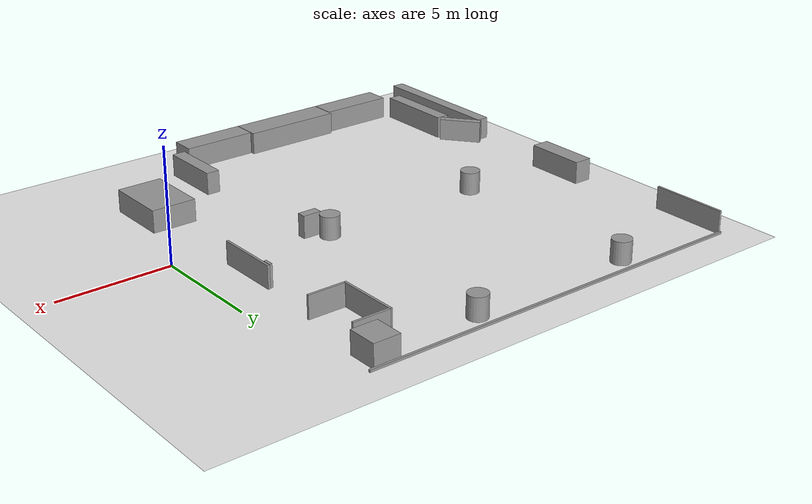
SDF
<sdf version="1.6">
 <world name="default">
  <model name="ground_plane">
   <static>1</static>
   <link name="link">
    <collision name="collision">
     <geometry><plane><normal>0 0 1</normal><size>100 100</size></plane></geometry>
     <surface><friction><ode><mu>100</mu><mu2>50</mu2></ode></friction></surface>
    </collision>
    <visual name="visual">
     <cast_shadows>0</cast_shadows>
     <geometry><plane><normal>0 0 1</normal><size>100 100</size></plane></geometry>
     <material>
      <script><uri>file://media/materials/scripts/gazebo.material</uri><name>Gazebo/WhiteGlow</name></script>
     </material>
    </visual>
   </link>
  </model>
  <model name="L81">
   <link name="link_0">
    <pose>15.5392 12.1518 0.017394 0 -0 0</pose>
    <inertial>
     <mass>1</mass>
     <inertia><ixx>0.145833</ixx><ixy>0</ixy><ixz>0</ixz><iyy>0.145833</iyy><iyz>0</iyz><izz>0.125</izz></inertia>
    </inertial>
    <visual name="visual">
     <geometry><cylinder><radius>0.43</radius><length>1</length></cylinder></geometry>
     <material>
      <lighting>1</lighting>
      <script><uri>file://media/materials/scripts/gazebo.material</uri><name>Gazebo/Grey</name></script>
      <shader type="pixel"><normal_map>__default__</normal_map></shader>
      <ambient>0.3 0.3 0.3 1</ambient>
      <diffuse>0.7 0.7 0.7 1</diffuse>
      <specular>0.01 0.01 0.01 1</specular>
      <emissive>0 0 0 1</emissive>
     </material>
    </visual>
    <collision name="collision">
     <geometry><cylinder><radius>0.43</radius><length>1</length></cylinder></geometry>
     <surface>
      <friction>
       <ode><mu>1</mu><mu2>1</mu2><fdir1>0 0 0</fdir1><slip1>0</slip1><slip2>0</slip2></ode>
       <torsional>
        <coefficient>1</coefficient>
        <patch_radius>0</patch_radius>
        <surface_radius>0</surface_radius>
        <use_patch_radius>1</use_patch_radius>
        <ode><slip>0</slip></ode>
       </torsional>
      </friction>
      <bounce><restitution_coefficient>0</restitution_coefficient><threshold>1e+06</threshold></bounce>
      <contact>
       <collide_without_contact>0</collide_without_contact>
       <collide_without_contact_bitmask>1</collide_without_contact_bitmask>
       <collide_bitmask>1</collide_bitmask>
       <ode>
        <soft_cfm>0</soft_cfm>
        <soft_erp>0.2</soft_erp>
        <kp>1e+13</kp>
        <kd>1</kd>
        <max_vel>0.01</max_vel>
        <min_depth>0</min_depth>
       </ode>
       <bullet>
        <split_impulse>1</split_impulse>
        <split_impulse_penetration_threshold>-0.01</split_impulse_penetration_threshold>
        <soft_cfm>0</soft_cfm>
        <soft_erp>0.2</soft_erp>
        <kp>1e+13</kp>
        <kd>1</kd>
       </bullet>
      </contact>
     </surface>
    </collision>
   </link>
   <link name="link_0_clone">
    <pose>15.5293 4.61164 0.017394 0 -0 0</pose>
    <inertial>
     <mass>1</mass>
     <inertia><ixx>0.145833</ixx><ixy>0</ixy><ixz>0</ixz><iyy>0.145833</iyy><iyz>0</iyz><izz>0.125</izz></inertia>
    </inertial>
    <visual name="visual">
     <geometry><cylinder><radius>0.43</radius><length>1</length></cylinder></geometry>
     <material>
      <lighting>1</lighting>
      <script><uri>file://media/materials/scripts/gazebo.material</uri><name>Gazebo/Grey</name></script>
      <shader type="pixel"><normal_map>__default__</normal_map></shader>
      <ambient>0.3 0.3 0.3 1</ambient>
      <diffuse>0.7 0.7 0.7 1</diffuse>
      <specular>0.01 0.01 0.01 1</specular>
      <emissive>0 0 0 1</emissive>
     </material>
    </visual>
    <collision name="collision">
     <geometry><cylinder><radius>0.43</radius><length>1</length></cylinder></geometry>
     <surface>
      <friction>
       <ode><mu>1</mu><mu2>1</mu2><fdir1>0 0 0</fdir1><slip1>0</slip1><slip2>0</slip2></ode>
       <torsional>
        <coefficient>1</coefficient>
        <patch_radius>0</patch_radius>
        <surface_radius>0</surface_radius>
        <use_patch_radius>1</use_patch_radius>
        <ode><slip>0</slip></ode>
       </torsional>
      </friction>
      <bounce><restitution_coefficient>0</restitution_coefficient><threshold>1e+06</threshold></bounce>
      <contact>
       <collide_without_contact>0</collide_without_contact>
       <collide_without_contact_bitmask>1</collide_without_contact_bitmask>
       <collide_bitmask>1</collide_bitmask>
       <ode>
        <soft_cfm>0</soft_cfm>
        <soft_erp>0.2</soft_erp>
        <kp>1e+13</kp>
        <kd>1</kd>
        <max_vel>0.01</max_vel>
        <min_depth>0</min_depth>
       </ode>
       <bullet>
        <split_impulse>1</split_impulse>
        <split_impulse_penetration_threshold>-0.01</split_impulse_penetration_threshold>
        <soft_cfm>0</soft_cfm>
        <soft_erp>0.2</soft_erp>
        <kp>1e+13</kp>
        <kd>1</kd>
       </bullet>
      </contact>
     </surface>
    </collision>
   </link>
   <link name="link_0_clone_0">
    <pose>6.51018 12.165 0.017394 0 -0 0</pose>
    <inertial>
     <mass>1</mass>
     <inertia><ixx>0.145833</ixx><ixy>0</ixy><ixz>0</ixz><iyy>0.145833</iyy><iyz>0</iyz><izz>0.125</izz></inertia>
    </inertial>
    <visual name="visual">
     <geometry><cylinder><radius>0.43</radius><length>1</length></cylinder></geometry>
     <material>
      <lighting>1</lighting>
      <script><uri>file://media/materials/scripts/gazebo.material</uri><name>Gazebo/Grey</name></script>
      <shader type="pixel"><normal_map>__default__</normal_map></shader>
      <ambient>0.3 0.3 0.3 1</ambient>
      <diffuse>0.7 0.7 0.7 1</diffuse>
      <specular>0.01 0.01 0.01 1</specular>
      <emissive>0 0 0 1</emissive>
     </material>
    </visual>
    <collision name="collision">
     <geometry><cylinder><radius>0.43</radius><length>1</length></cylinder></geometry>
     <surface>
      <friction>
       <ode><mu>1</mu><mu2>1</mu2><fdir1>0 0 0</fdir1><slip1>0</slip1><slip2>0</slip2></ode>
       <torsional>
        <coefficient>1</coefficient>
        <patch_radius>0</patch_radius>
        <surface_radius>0</surface_radius>
        <use_patch_radius>1</use_patch_radius>
        <ode><slip>0</slip></ode>
       </torsional>
      </friction>
      <bounce><restitution_coefficient>0</restitution_coefficient><threshold>1e+06</threshold></bounce>
      <contact>
       <collide_without_contact>0</collide_without_contact>
       <collide_without_contact_bitmask>1</collide_without_contact_bitmask>
       <collide_bitmask>1</collide_bitmask>
       <ode>
        <soft_cfm>0</soft_cfm>
        <soft_erp>0.2</soft_erp>
        <kp>1e+13</kp>
        <kd>1</kd>
        <max_vel>0.01</max_vel>
        <min_depth>0</min_depth>
       </ode>
       <bullet>
        <split_impulse>1</split_impulse>
        <split_impulse_penetration_threshold>-0.01</split_impulse_penetration_threshold>
        <soft_cfm>0</soft_cfm>
        <soft_erp>0.2</soft_erp>
        <kp>1e+13</kp>
        <kd>1</kd>
       </bullet>
      </contact>
     </surface>
    </collision>
   </link>
   <link name="link_0_clone_0_clone">
    <pose>6.51926 4.6616 0.017394 0 -0 0</pose>
    <inertial>
     <mass>1</mass>
     <inertia><ixx>0.145833</ixx><ixy>0</ixy><ixz>0</ixz><iyy>0.145833</iyy><iyz>0</iyz><izz>0.125</izz></inertia>
    </inertial>
    <visual name="visual">
     <geometry><cylinder><radius>0.43</radius><length>1</length></cylinder></geometry>
     <material>
      <lighting>1</lighting>
      <script><uri>file://media/materials/scripts/gazebo.material</uri><name>Gazebo/Grey</name></script>
      <shader type="pixel"><normal_map>__default__</normal_map></shader>
      <ambient>0.3 0.3 0.3 1</ambient>
      <diffuse>0.7 0.7 0.7 1</diffuse>
      <specular>0.01 0.01 0.01 1</specular>
      <emissive>0 0 0 1</emissive>
     </material>
    </visual>
    <collision name="collision">
     <geometry><cylinder><radius>0.43</radius><length>1</length></cylinder></geometry>
     <surface>
      <friction>
       <ode><mu>1</mu><mu2>1</mu2><fdir1>0 0 0</fdir1><slip1>0</slip1><slip2>0</slip2></ode>
       <torsional>
        <coefficient>1</coefficient>
        <patch_radius>0</patch_radius>
        <surface_radius>0</surface_radius>
        <use_patch_radius>1</use_patch_radius>
        <ode><slip>0</slip></ode>
       </torsional>
      </friction>
      <bounce><restitution_coefficient>0</restitution_coefficient><threshold>1e+06</threshold></bounce>
      <contact>
       <collide_without_contact>0</collide_without_contact>
       <collide_without_contact_bitmask>1</collide_without_contact_bitmask>
       <collide_bitmask>1</collide_bitmask>
       <ode>
        <soft_cfm>0</soft_cfm>
        <soft_erp>0.2</soft_erp>
        <kp>1e+13</kp>
        <kd>1</kd>
        <max_vel>0.01</max_vel>
        <min_depth>0</min_depth>
       </ode>
       <bullet>
        <split_impulse>1</split_impulse>
        <split_impulse_penetration_threshold>-0.01</split_impulse_penetration_threshold>
        <soft_cfm>0</soft_cfm>
        <soft_erp>0.2</soft_erp>
        <kp>1e+13</kp>
        <kd>1</kd>
       </bullet>
      </contact>
     </surface>
    </collision>
   </link>
   <link name="link_1_clone_2_clone">
    <pose>13.3256 16.665 0.017394 0 -0 0</pose>
    <inertial>
     <mass>0.0501795</mass>
     <inertia>
      <ixx>0.0042482</ixx>
      <ixy>0</ixy>
      <ixz>0</ixz>
      <iyy>0.00484291</iyy>
      <iyz>0</iyz>
      <izz>0.000727871</izz>
     </inertia>
    </inertial>
    <visual name="visual">
     <geometry><box><size>0.397671 0.126182 1</size></box></geometry>
     <material>
      <lighting>1</lighting>
      <script><uri>file://media/materials/scripts/gazebo.material</uri><name>Gazebo/Grey</name></script>
      <shader type="pixel"><normal_map>__default__</normal_map></shader>
      <ambient>0.3 0.3 0.3 1</ambient>
      <diffuse>0.7 0.7 0.7 1</diffuse>
      <specular>0.01 0.01 0.01 1</specular>
      <emissive>0 0 0 1</emissive>
     </material>
    </visual>
    <collision name="collision">
     <geometry><box><size>0.397671 0.126182 1</size></box></geometry>
     <surface>
      <friction>
       <ode><mu>1</mu><mu2>1</mu2><fdir1>0 0 0</fdir1><slip1>0</slip1><slip2>0</slip2></ode>
       <torsional>
        <coefficient>1</coefficient>
        <patch_radius>0</patch_radius>
        <surface_radius>0</surface_radius>
        <use_patch_radius>1</use_patch_radius>
        <ode><slip>0</slip></ode>
       </torsional>
      </friction>
      <bounce><restitution_coefficient>0</restitution_coefficient><threshold>1e+06</threshold></bounce>
      <contact>
       <collide_without_contact>0</collide_without_contact>
       <collide_without_contact_bitmask>1</collide_without_contact_bitmask>
       <collide_bitmask>1</collide_bitmask>
       <ode>
        <soft_cfm>0</soft_cfm>
        <soft_erp>0.2</soft_erp>
        <kp>1e+13</kp>
        <kd>1</kd>
        <max_vel>0.01</max_vel>
        <min_depth>0</min_depth>
       </ode>
       <bullet>
        <split_impulse>1</split_impulse>
        <split_impulse_penetration_threshold>-0.01</split_impulse_penetration_threshold>
        <soft_cfm>0</soft_cfm>
        <soft_erp>0.2</soft_erp>
        <kp>1e+13</kp>
        <kd>1</kd>
       </bullet>
      </contact>
     </surface>
    </collision>
   </link>
   <link name="link_1_clone_2_clone_clone">
    <pose>16.1732 12.7098 0.017394 0 -0 0</pose>
    <inertial>
     <mass>0.330309</mass>
     <inertia>
      <ixx>0.0465158</ixx>
      <ixy>0</ixy>
      <ixz>0</ixz>
      <iyy>0.0318787</iyy>
      <iyz>0</iyz>
      <izz>0.023343</izz>
     </inertia>
    </inertial>
    <visual name="visual">
     <geometry><box><size>0.397671 0.830603 1</size></box></geometry>
     <material>
      <lighting>1</lighting>
      <script><uri>file://media/materials/scripts/gazebo.material</uri><name>Gazebo/Grey</name></script>
      <shader type="pixel"><normal_map>__default__</normal_map></shader>
      <ambient>0.3 0.3 0.3 1</ambient>
      <diffuse>0.7 0.7 0.7 1</diffuse>
      <specular>0.01 0.01 0.01 1</specular>
      <emissive>0 0 0 1</emissive>
     </material>
    </visual>
    <collision name="collision">
     <geometry><box><size>0.397671 0.830603 1</size></box></geometry>
     <surface>
      <friction>
       <ode><mu>1</mu><mu2>1</mu2><fdir1>0 0 0</fdir1><slip1>0</slip1><slip2>0</slip2></ode>
       <torsional>
        <coefficient>1</coefficient>
        <patch_radius>0</patch_radius>
        <surface_radius>0</surface_radius>
        <use_patch_radius>1</use_patch_radius>
        <ode><slip>0</slip></ode>
       </torsional>
      </friction>
      <bounce><restitution_coefficient>0</restitution_coefficient><threshold>1e+06</threshold></bounce>
      <contact>
       <collide_without_contact>0</collide_without_contact>
       <collide_without_contact_bitmask>1</collide_without_contact_bitmask>
       <collide_bitmask>1</collide_bitmask>
       <ode>
        <soft_cfm>0</soft_cfm>
        <soft_erp>0.2</soft_erp>
        <kp>1e+13</kp>
        <kd>1</kd>
        <max_vel>0.01</max_vel>
        <min_depth>0</min_depth>
       </ode>
       <bullet>
        <split_impulse>1</split_impulse>
        <split_impulse_penetration_threshold>-0.01</split_impulse_penetration_threshold>
        <soft_cfm>0</soft_cfm>
        <soft_erp>0.2</soft_erp>
        <kp>1e+13</kp>
        <kd>1</kd>
       </bullet>
      </contact>
     </surface>
    </collision>
   </link>
   <link name="link_clone_0_clone_clone_0_clone_clone_clone_1_clone_0_clone_clone_clone_1">
    <pose>5.8259 8.58518 -0.453146 0 -0 0</pose>
    <inertial>
     <mass>6.48611</mass>
     <inertia><ixx>178.504</ixx><ixy>0</ixy><ixz>0</ixz><iyy>0.545914</iyy><iyz>0</iyz><izz>177.969</izz></inertia>
    </inertial>
    <visual name="visual">
     <geometry><box><size>0.1 18.1453 0.1</size></box></geometry>
     <material>
      <script><name>Gazebo/Grey</name><uri>file://media/materials/scripts/gazebo.material</uri></script>
      <shader type="pixel"><normal_map>__default__</normal_map></shader>
      <ambient>0.3 0.3 0.3 1</ambient>
      <diffuse>0.7 0.7 0.7 1</diffuse>
      <specular>0.01 0.01 0.01 1</specular>
      <emissive>0 0 0 1</emissive>
     </material>
    </visual>
    <collision name="collision">
     <geometry><box><size>0.1 18.1453 0.1</size></box></geometry>
     <surface>
      <friction>
       <ode><mu>1</mu><mu2>1</mu2><fdir1>0 0 0</fdir1><slip1>0</slip1><slip2>0</slip2></ode>
       <torsional>
        <coefficient>1</coefficient>
        <patch_radius>0</patch_radius>
        <surface_radius>0</surface_radius>
        <use_patch_radius>1</use_patch_radius>
        <ode><slip>0</slip></ode>
       </torsional>
      </friction>
      <bounce><restitution_coefficient>0</restitution_coefficient><threshold>1e+06</threshold></bounce>
      <contact>
       <collide_without_contact>0</collide_without_contact>
       <collide_without_contact_bitmask>1</collide_without_contact_bitmask>
       <collide_bitmask>1</collide_bitmask>
       <ode>
        <soft_cfm>0</soft_cfm>
        <soft_erp>0.2</soft_erp>
        <kp>1e+13</kp>
        <kd>1</kd>
        <max_vel>0.01</max_vel>
        <min_depth>0</min_depth>
       </ode>
       <bullet>
        <split_impulse>1</split_impulse>
        <split_impulse_penetration_threshold>-0.01</split_impulse_penetration_threshold>
        <soft_cfm>0</soft_cfm>
        <soft_erp>0.2</soft_erp>
        <kp>1e+13</kp>
        <kd>1</kd>
       </bullet>
      </contact>
     </surface>
    </collision>
   </link>
   <link name="link_clone_0_clone_clone_0_clone_clone_clone_1_clone_1_clone_2">
    <pose>21.7066 16.5978 -0 0 -0 0</pose>
    <inertial>
     <mass>58.8671</mass>
     <inertia><ixx>24.528</ixx><ixy>0</ixy><ixz>0</ixz><iyy>44.8619</iyy><iyz>0</iyz><izz>59.5787</izz></inertia>
    </inertial>
    <visual name="visual">
     <geometry><box><size>2.85395 2 1</size></box></geometry>
     <material>
      <script><name>Gazebo/Grey</name><uri>file://media/materials/scripts/gazebo.material</uri></script>
      <shader type="pixel"><normal_map>__default__</normal_map></shader>
      <ambient>0.3 0.3 0.3 1</ambient>
      <diffuse>0.7 0.7 0.7 1</diffuse>
      <specular>0.01 0.01 0.01 1</specular>
      <emissive>0 0 0 1</emissive>
     </material>
    </visual>
    <collision name="collision">
     <geometry><box><size>2.85395 2 1</size></box></geometry>
     <surface>
      <friction>
       <ode><mu>1</mu><mu2>1</mu2><fdir1>0 0 0</fdir1><slip1>0</slip1><slip2>0</slip2></ode>
       <torsional>
        <coefficient>1</coefficient>
        <patch_radius>0</patch_radius>
        <surface_radius>0</surface_radius>
        <use_patch_radius>1</use_patch_radius>
        <ode><slip>0</slip></ode>
       </torsional>
      </friction>
      <bounce><restitution_coefficient>0</restitution_coefficient><threshold>1e+06</threshold></bounce>
      <contact>
       <collide_without_contact>0</collide_without_contact>
       <collide_without_contact_bitmask>1</collide_without_contact_bitmask>
       <collide_bitmask>1</collide_bitmask>
       <ode>
        <soft_cfm>0</soft_cfm>
        <soft_erp>0.2</soft_erp>
        <kp>1e+13</kp>
        <kd>1</kd>
        <max_vel>0.01</max_vel>
        <min_depth>0</min_depth>
       </ode>
       <bullet>
        <split_impulse>1</split_impulse>
        <split_impulse_penetration_threshold>-0.01</split_impulse_penetration_threshold>
        <soft_cfm>0</soft_cfm>
        <soft_erp>0.2</soft_erp>
        <kp>1e+13</kp>
        <kd>1</kd>
       </bullet>
      </contact>
     </surface>
    </collision>
   </link>
   <link name="link_clone_0_clone_clone_0_clone_clone_clone_1_clone_1_clone_2_clone">
    <pose>6.52717 16.8346 0 0 -0 0</pose>
    <inertial>
     <mass>16.2132</mass>
     <inertia><ixx>3.28442</ixx><ixy>0</ixy><ixz>0</ixz><iyy>3.68461</iyy><iyz>0</iyz><izz>4.26683</izz></inertia>
    </inertial>
    <visual name="visual">
     <geometry><box><size>1.3142 1.19621 1</size></box></geometry>
     <material>
      <script><name>Gazebo/Grey</name><uri>file://media/materials/scripts/gazebo.material</uri></script>
      <shader type="pixel"><normal_map>__default__</normal_map></shader>
      <ambient>0.3 0.3 0.3 1</ambient>
      <diffuse>0.7 0.7 0.7 1</diffuse>
      <specular>0.01 0.01 0.01 1</specular>
      <emissive>0 0 0 1</emissive>
     </material>
    </visual>
    <collision name="collision">
     <geometry><box><size>1.3142 1.19621 1</size></box></geometry>
     <surface>
      <friction>
       <ode><mu>1</mu><mu2>1</mu2><fdir1>0 0 0</fdir1><slip1>0</slip1><slip2>0</slip2></ode>
       <torsional>
        <coefficient>1</coefficient>
        <patch_radius>0</patch_radius>
        <surface_radius>0</surface_radius>
        <use_patch_radius>1</use_patch_radius>
        <ode><slip>0</slip></ode>
       </torsional>
      </friction>
      <bounce><restitution_coefficient>0</restitution_coefficient><threshold>1e+06</threshold></bounce>
      <contact>
       <collide_without_contact>0</collide_without_contact>
       <collide_without_contact_bitmask>1</collide_without_contact_bitmask>
       <collide_bitmask>1</collide_bitmask>
       <ode>
        <soft_cfm>0</soft_cfm>
        <soft_erp>0.2</soft_erp>
        <kp>1e+13</kp>
        <kd>1</kd>
        <max_vel>0.01</max_vel>
        <min_depth>0</min_depth>
       </ode>
       <bullet>
        <split_impulse>1</split_impulse>
        <split_impulse_penetration_threshold>-0.01</split_impulse_penetration_threshold>
        <soft_cfm>0</soft_cfm>
        <soft_erp>0.2</soft_erp>
        <kp>1e+13</kp>
        <kd>1</kd>
       </bullet>
      </contact>
     </surface>
    </collision>
   </link>
   <link name="link_clone_0_clone_clone_0_clone_clone_clone_1_clone_1_clone_2_clone_0">
    <pose>23.7852 13.4165 -0 0 -0 0</pose>
    <inertial>
     <mass>17.6822</mass>
     <inertia><ixx>2.00531</ixx><ixy>0</ixy><ixz>0</ixz><iyy>13.4754</iyy><iyz>0</iyz><izz>12.5336</izz></inertia>
    </inertial>
    <visual name="visual">
     <geometry><box><size>2.85395 0.60075 1</size></box></geometry>
     <material>
      <script><name>Gazebo/Grey</name><uri>file://media/materials/scripts/gazebo.material</uri></script>
      <shader type="pixel"><normal_map>__default__</normal_map></shader>
      <ambient>0.3 0.3 0.3 1</ambient>
      <diffuse>0.7 0.7 0.7 1</diffuse>
      <specular>0.01 0.01 0.01 1</specular>
      <emissive>0 0 0 1</emissive>
     </material>
    </visual>
    <collision name="collision">
     <geometry><box><size>2.85395 0.60075 1</size></box></geometry>
     <surface>
      <friction>
       <ode><mu>1</mu><mu2>1</mu2><fdir1>0 0 0</fdir1><slip1>0</slip1><slip2>0</slip2></ode>
       <torsional>
        <coefficient>1</coefficient>
        <patch_radius>0</patch_radius>
        <surface_radius>0</surface_radius>
        <use_patch_radius>1</use_patch_radius>
        <ode><slip>0</slip></ode>
       </torsional>
      </friction>
      <bounce><restitution_coefficient>0</restitution_coefficient><threshold>1e+06</threshold></bounce>
      <contact>
       <collide_without_contact>0</collide_without_contact>
       <collide_without_contact_bitmask>1</collide_without_contact_bitmask>
       <collide_bitmask>1</collide_bitmask>
       <ode>
        <soft_cfm>0</soft_cfm>
        <soft_erp>0.2</soft_erp>
        <kp>1e+13</kp>
        <kd>1</kd>
        <max_vel>0.01</max_vel>
        <min_depth>0</min_depth>
       </ode>
       <bullet>
        <split_impulse>1</split_impulse>
        <split_impulse_penetration_threshold>-0.01</split_impulse_penetration_threshold>
        <soft_cfm>0</soft_cfm>
        <soft_erp>0.2</soft_erp>
        <kp>1e+13</kp>
        <kd>1</kd>
       </bullet>
      </contact>
     </surface>
    </collision>
   </link>
   <link name="link_clone_0_clone_clone_0_clone_clone_clone_1_clone_1_clone_2_clone_0_clone">
    <pose>23.3376 1.08172 0 0 -0 0</pose>
    <inertial>
     <mass>22.7631</mass>
     <inertia><ixx>2.58153</ixx><ixy>0</ixy><ixz>0</ixz><iyy>27.5025</iyy><iyz>0</iyz><izz>26.2902</izz></inertia>
    </inertial>
    <visual name="visual">
     <geometry><box><size>3.67402 0.60075 1</size></box></geometry>
     <material>
      <script><name>Gazebo/Grey</name><uri>file://media/materials/scripts/gazebo.material</uri></script>
      <shader type="pixel"><normal_map>__default__</normal_map></shader>
      <ambient>0.3 0.3 0.3 1</ambient>
      <diffuse>0.7 0.7 0.7 1</diffuse>
      <specular>0.01 0.01 0.01 1</specular>
      <emissive>0 0 0 1</emissive>
     </material>
    </visual>
    <collision name="collision">
     <geometry><box><size>3.67402 0.60075 1</size></box></geometry>
     <surface>
      <friction>
       <ode><mu>1</mu><mu2>1</mu2><fdir1>0 0 0</fdir1><slip1>0</slip1><slip2>0</slip2></ode>
       <torsional>
        <coefficient>1</coefficient>
        <patch_radius>0</patch_radius>
        <surface_radius>0</surface_radius>
        <use_patch_radius>1</use_patch_radius>
        <ode><slip>0</slip></ode>
       </torsional>
      </friction>
      <bounce><restitution_coefficient>0</restitution_coefficient><threshold>1e+06</threshold></bounce>
      <contact>
       <collide_without_contact>0</collide_without_contact>
       <collide_without_contact_bitmask>1</collide_without_contact_bitmask>
       <collide_bitmask>1</collide_bitmask>
       <ode>
        <soft_cfm>0</soft_cfm>
        <soft_erp>0.2</soft_erp>
        <kp>1e+13</kp>
        <kd>1</kd>
        <max_vel>0.01</max_vel>
        <min_depth>0</min_depth>
       </ode>
       <bullet>
        <split_impulse>1</split_impulse>
        <split_impulse_penetration_threshold>-0.01</split_impulse_penetration_threshold>
        <soft_cfm>0</soft_cfm>
        <soft_erp>0.2</soft_erp>
        <kp>1e+13</kp>
        <kd>1</kd>
       </bullet>
      </contact>
     </surface>
    </collision>
   </link>
   <link name="link_clone_0_clone_clone_0_clone_clone_clone_1_clone_1_clone_2_clone_0_clone_0">
    <pose>25.8383 7.21654 -0 0 -0 0</pose>
    <inertial>
     <mass>59.4141</mass>
     <inertia><ixx>103.411</ixx><ixy>0</ixy><ixz>0</ixz><iyy>13.2154</iyy><iyz>0</iyz><izz>106.724</izz></inertia>
    </inertial>
    <visual name="visual">
     <geometry><box><size>1.29195 4.45938 1</size></box></geometry>
     <material>
      <script><name>Gazebo/Grey</name><uri>file://media/materials/scripts/gazebo.material</uri></script>
      <shader type="pixel"><normal_map>__default__</normal_map></shader>
      <ambient>0.3 0.3 0.3 1</ambient>
      <diffuse>0.7 0.7 0.7 1</diffuse>
      <specular>0.01 0.01 0.01 1</specular>
      <emissive>0 0 0 1</emissive>
     </material>
    </visual>
    <collision name="collision">
     <geometry><box><size>1.29195 4.45938 1</size></box></geometry>
     <surface>
      <friction>
       <ode><mu>1</mu><mu2>1</mu2><fdir1>0 0 0</fdir1><slip1>0</slip1><slip2>0</slip2></ode>
       <torsional>
        <coefficient>1</coefficient>
        <patch_radius>0</patch_radius>
        <surface_radius>0</surface_radius>
        <use_patch_radius>1</use_patch_radius>
        <ode><slip>0</slip></ode>
       </torsional>
      </friction>
      <bounce><restitution_coefficient>0</restitution_coefficient><threshold>1e+06</threshold></bounce>
      <contact>
       <collide_without_contact>0</collide_without_contact>
       <collide_without_contact_bitmask>1</collide_without_contact_bitmask>
       <collide_bitmask>1</collide_bitmask>
       <ode>
        <soft_cfm>0</soft_cfm>
        <soft_erp>0.2</soft_erp>
        <kp>1e+13</kp>
        <kd>1</kd>
        <max_vel>0.01</max_vel>
        <min_depth>0</min_depth>
       </ode>
       <bullet>
        <split_impulse>1</split_impulse>
        <split_impulse_penetration_threshold>-0.01</split_impulse_penetration_threshold>
        <soft_cfm>0</soft_cfm>
        <soft_erp>0.2</soft_erp>
        <kp>1e+13</kp>
        <kd>1</kd>
       </bullet>
      </contact>
     </surface>
    </collision>
   </link>
   <link name="link_clone_0_clone_clone_0_clone_clone_clone_1_clone_1_clone_2_clone_0_clone_0_clone">
    <pose>25.9352 11.1266 -0 0 -0 0</pose>
    <inertial>
     <mass>37.7035</mass>
     <inertia><ixx>37.8891</ixx><ixy>0</ixy><ixz>0</ixz><iyy>6.93867</iyy><iyz>0</iyz><izz>38.5439</izz></inertia>
    </inertial>
    <visual name="visual">
     <geometry><box><size>1.09927 3.32552 1</size></box></geometry>
     <material>
      <script><name>Gazebo/Grey</name><uri>file://media/materials/scripts/gazebo.material</uri></script>
      <shader type="pixel"><normal_map>__default__</normal_map></shader>
      <ambient>0.3 0.3 0.3 1</ambient>
      <diffuse>0.7 0.7 0.7 1</diffuse>
      <specular>0.01 0.01 0.01 1</specular>
      <emissive>0 0 0 1</emissive>
     </material>
    </visual>
    <collision name="collision">
     <geometry><box><size>1.09927 3.32552 1</size></box></geometry>
     <surface>
      <friction>
       <ode><mu>1</mu><mu2>1</mu2><fdir1>0 0 0</fdir1><slip1>0</slip1><slip2>0</slip2></ode>
       <torsional>
        <coefficient>1</coefficient>
        <patch_radius>0</patch_radius>
        <surface_radius>0</surface_radius>
        <use_patch_radius>1</use_patch_radius>
        <ode><slip>0</slip></ode>
       </torsional>
      </friction>
      <bounce><restitution_coefficient>0</restitution_coefficient><threshold>1e+06</threshold></bounce>
      <contact>
       <collide_without_contact>0</collide_without_contact>
       <collide_without_contact_bitmask>1</collide_without_contact_bitmask>
       <collide_bitmask>1</collide_bitmask>
       <ode>
        <soft_cfm>0</soft_cfm>
        <soft_erp>0.2</soft_erp>
        <kp>1e+13</kp>
        <kd>1</kd>
        <max_vel>0.01</max_vel>
        <min_depth>0</min_depth>
       </ode>
       <bullet>
        <split_impulse>1</split_impulse>
        <split_impulse_penetration_threshold>-0.01</split_impulse_penetration_threshold>
        <soft_cfm>0</soft_cfm>
        <soft_erp>0.2</soft_erp>
        <kp>1e+13</kp>
        <kd>1</kd>
       </bullet>
      </contact>
     </surface>
    </collision>
   </link>
   <link name="link_clone_0_clone_clone_0_clone_clone_clone_1_clone_1_clone_2_clone_0_clone_0_clone_clone">
    <pose>25.9394 3.29696 0 0 -0 0</pose>
    <inertial>
     <mass>37.7035</mass>
     <inertia><ixx>37.8891</ixx><ixy>0</ixy><ixz>0</ixz><iyy>6.93867</iyy><iyz>0</iyz><izz>38.5439</izz></inertia>
    </inertial>
    <visual name="visual">
     <geometry><box><size>1.09927 3.32552 1</size></box></geometry>
     <material>
      <script><name>Gazebo/Grey</name><uri>file://media/materials/scripts/gazebo.material</uri></script>
      <shader type="pixel"><normal_map>__default__</normal_map></shader>
      <ambient>0.3 0.3 0.3 1</ambient>
      <diffuse>0.7 0.7 0.7 1</diffuse>
      <specular>0.01 0.01 0.01 1</specular>
      <emissive>0 0 0 1</emissive>
     </material>
    </visual>
    <collision name="collision">
     <geometry><box><size>1.09927 3.32552 1</size></box></geometry>
     <surface>
      <friction>
       <ode><mu>1</mu><mu2>1</mu2><fdir1>0 0 0</fdir1><slip1>0</slip1><slip2>0</slip2></ode>
       <torsional>
        <coefficient>1</coefficient>
        <patch_radius>0</patch_radius>
        <surface_radius>0</surface_radius>
        <use_patch_radius>1</use_patch_radius>
        <ode><slip>0</slip></ode>
       </torsional>
      </friction>
      <bounce><restitution_coefficient>0</restitution_coefficient><threshold>1e+06</threshold></bounce>
      <contact>
       <collide_without_contact>0</collide_without_contact>
       <collide_without_contact_bitmask>1</collide_without_contact_bitmask>
       <collide_bitmask>1</collide_bitmask>
       <ode>
        <soft_cfm>0</soft_cfm>
        <soft_erp>0.2</soft_erp>
        <kp>1e+13</kp>
        <kd>1</kd>
        <max_vel>0.01</max_vel>
        <min_depth>0</min_depth>
       </ode>
       <bullet>
        <split_impulse>1</split_impulse>
        <split_impulse_penetration_threshold>-0.01</split_impulse_penetration_threshold>
        <soft_cfm>0</soft_cfm>
        <soft_erp>0.2</soft_erp>
        <kp>1e+13</kp>
        <kd>1</kd>
       </bullet>
      </contact>
     </surface>
    </collision>
   </link>
   <link name="link_clone_0_clone_clone_0_clone_clone_clone_1_clone_1_clone_2_clone_0_clone_clone">
    <pose>20.6213 0.727166 0 0 -0 0.662958</pose>
    <inertial>
     <mass>6.7515</mass>
     <inertia><ixx>0.628607</ixx><ixy>0</ixy><ixz>0</ixz><iyy>2.61839</iyy><iyz>0</iyz><izz>2.12174</izz></inertia>
    </inertial>
    <visual name="visual">
     <geometry><box><size>1.91151 0.342455 1</size></box></geometry>
     <material>
      <script><name>Gazebo/Grey</name><uri>file://media/materials/scripts/gazebo.material</uri></script>
      <shader type="pixel"><normal_map>__default__</normal_map></shader>
      <ambient>0.3 0.3 0.3 1</ambient>
      <diffuse>0.7 0.7 0.7 1</diffuse>
      <specular>0.01 0.01 0.01 1</specular>
      <emissive>0 0 0 1</emissive>
     </material>
    </visual>
    <collision name="collision">
     <geometry><box><size>1.91151 0.342455 1</size></box></geometry>
     <surface>
      <friction>
       <ode><mu>1</mu><mu2>1</mu2><fdir1>0 0 0</fdir1><slip1>0</slip1><slip2>0</slip2></ode>
       <torsional>
        <coefficient>1</coefficient>
        <patch_radius>0</patch_radius>
        <surface_radius>0</surface_radius>
        <use_patch_radius>1</use_patch_radius>
        <ode><slip>0</slip></ode>
       </torsional>
      </friction>
      <bounce><restitution_coefficient>0</restitution_coefficient><threshold>1e+06</threshold></bounce>
      <contact>
       <collide_without_contact>0</collide_without_contact>
       <collide_without_contact_bitmask>1</collide_without_contact_bitmask>
       <collide_bitmask>1</collide_bitmask>
       <ode>
        <soft_cfm>0</soft_cfm>
        <soft_erp>0.2</soft_erp>
        <kp>1e+13</kp>
        <kd>1</kd>
        <max_vel>0.01</max_vel>
        <min_depth>0</min_depth>
       </ode>
       <bullet>
        <split_impulse>1</split_impulse>
        <split_impulse_penetration_threshold>-0.01</split_impulse_penetration_threshold>
        <soft_cfm>0</soft_cfm>
        <soft_erp>0.2</soft_erp>
        <kp>1e+13</kp>
        <kd>1</kd>
       </bullet>
      </contact>
     </surface>
    </collision>
   </link>
   <link name="link_clone_0_clone_clone_0_clone_clone_clone_clone_0">
    <pose>10.2174 16.2239 0 0 -0 0</pose>
    <inertial>
     <mass>1.15984</mass>
     <inertia>
      <ixx>0.364783</ixx>
      <ixy>0</ixy>
      <ixz>0</ixz>
      <iyy>0.0976202</iyy>
      <iyz>0</iyz>
      <izz>0.269096</izz>
     </inertia>
    </inertial>
    <visual name="visual">
     <geometry><box><size>0.1 1.66557 1</size></box></geometry>
     <material>
      <script><name>Gazebo/Grey</name><uri>file://media/materials/scripts/gazebo.material</uri></script>
      <shader type="pixel"><normal_map>__default__</normal_map></shader>
      <ambient>0.3 0.3 0.3 1</ambient>
      <diffuse>0.7 0.7 0.7 1</diffuse>
      <specular>0.01 0.01 0.01 1</specular>
      <emissive>0 0 0 1</emissive>
     </material>
    </visual>
    <collision name="collision">
     <geometry><box><size>0.1 1.66557 1</size></box></geometry>
     <surface>
      <friction>
       <ode><mu>1</mu><mu2>1</mu2><fdir1>0 0 0</fdir1><slip1>0</slip1><slip2>0</slip2></ode>
       <torsional>
        <coefficient>1</coefficient>
        <patch_radius>0</patch_radius>
        <surface_radius>0</surface_radius>
        <use_patch_radius>1</use_patch_radius>
        <ode><slip>0</slip></ode>
       </torsional>
      </friction>
      <bounce><restitution_coefficient>0</restitution_coefficient><threshold>1e+06</threshold></bounce>
      <contact>
       <collide_without_contact>0</collide_without_contact>
       <collide_without_contact_bitmask>1</collide_without_contact_bitmask>
       <collide_bitmask>1</collide_bitmask>
       <ode>
        <soft_cfm>0</soft_cfm>
        <soft_erp>0.2</soft_erp>
        <kp>1e+13</kp>
        <kd>1</kd>
        <max_vel>0.01</max_vel>
        <min_depth>0</min_depth>
       </ode>
       <bullet>
        <split_impulse>1</split_impulse>
        <split_impulse_penetration_threshold>-0.01</split_impulse_penetration_threshold>
        <soft_cfm>0</soft_cfm>
        <soft_erp>0.2</soft_erp>
        <kp>1e+13</kp>
        <kd>1</kd>
       </bullet>
      </contact>
     </surface>
    </collision>
   </link>
   <link name="link_clone_0_clone_clone_0_clone_clone_clone_clone_0_clone">
    <pose>7.55475 16.2216 -0 0 -0 0</pose>
    <inertial>
     <mass>1.15984</mass>
     <inertia>
      <ixx>0.364783</ixx>
      <ixy>0</ixy>
      <ixz>0</ixz>
      <iyy>0.0976202</iyy>
      <iyz>0</iyz>
      <izz>0.269096</izz>
     </inertia>
    </inertial>
    <visual name="visual">
     <geometry><box><size>0.1 1.66557 1</size></box></geometry>
     <material>
      <script><name>Gazebo/Grey</name><uri>file://media/materials/scripts/gazebo.material</uri></script>
      <shader type="pixel"><normal_map>__default__</normal_map></shader>
      <ambient>0.3 0.3 0.3 1</ambient>
      <diffuse>0.7 0.7 0.7 1</diffuse>
      <specular>0.01 0.01 0.01 1</specular>
      <emissive>0 0 0 1</emissive>
     </material>
    </visual>
    <collision name="collision">
     <geometry><box><size>0.1 1.66557 1</size></box></geometry>
     <surface>
      <friction>
       <ode><mu>1</mu><mu2>1</mu2><fdir1>0 0 0</fdir1><slip1>0</slip1><slip2>0</slip2></ode>
       <torsional>
        <coefficient>1</coefficient>
        <patch_radius>0</patch_radius>
        <surface_radius>0</surface_radius>
        <use_patch_radius>1</use_patch_radius>
        <ode><slip>0</slip></ode>
       </torsional>
      </friction>
      <bounce><restitution_coefficient>0</restitution_coefficient><threshold>1e+06</threshold></bounce>
      <contact>
       <collide_without_contact>0</collide_without_contact>
       <collide_without_contact_bitmask>1</collide_without_contact_bitmask>
       <collide_bitmask>1</collide_bitmask>
       <ode>
        <soft_cfm>0</soft_cfm>
        <soft_erp>0.2</soft_erp>
        <kp>1e+13</kp>
        <kd>1</kd>
        <max_vel>0.01</max_vel>
        <min_depth>0</min_depth>
       </ode>
       <bullet>
        <split_impulse>1</split_impulse>
        <split_impulse_penetration_threshold>-0.01</split_impulse_penetration_threshold>
        <soft_cfm>0</soft_cfm>
        <soft_erp>0.2</soft_erp>
        <kp>1e+13</kp>
        <kd>1</kd>
       </bullet>
      </contact>
     </surface>
    </collision>
   </link>
   <link name="link_clone_clone_clone_clone_0_clone_clone_clone_0_clone">
    <pose>14.5471 16.7756 0 0 -0 0</pose>
    <inertial>
     <mass>0.851308</mass>
     <inertia>
      <ixx>0.0716518</ixx>
      <ixy>0</ixy>
      <ixz>0</ixz>
      <iyy>0.651336</iyy>
      <iyz>0</iyz>
      <izz>0.581103</izz>
     </inertia>
    </inertial>
    <visual name="visual">
     <geometry><box><size>2.86028 0.1 1</size></box></geometry>
     <material>
      <script><name>Gazebo/Grey</name><uri>file://media/materials/scripts/gazebo.material</uri></script>
      <shader type="pixel"><normal_map>__default__</normal_map></shader>
      <ambient>0.3 0.3 0.3 1</ambient>
      <diffuse>0.7 0.7 0.7 1</diffuse>
      <specular>0.01 0.01 0.01 1</specular>
      <emissive>0 0 0 1</emissive>
     </material>
    </visual>
    <collision name="collision">
     <geometry><box><size>2.86028 0.1 1</size></box></geometry>
     <surface>
      <friction>
       <ode><mu>1</mu><mu2>1</mu2><fdir1>0 0 0</fdir1><slip1>0</slip1><slip2>0</slip2></ode>
       <torsional>
        <coefficient>1</coefficient>
        <patch_radius>0</patch_radius>
        <surface_radius>0</surface_radius>
        <use_patch_radius>1</use_patch_radius>
        <ode><slip>0</slip></ode>
       </torsional>
      </friction>
      <bounce><restitution_coefficient>0</restitution_coefficient><threshold>1e+06</threshold></bounce>
      <contact>
       <collide_without_contact>0</collide_without_contact>
       <collide_without_contact_bitmask>1</collide_without_contact_bitmask>
       <collide_bitmask>1</collide_bitmask>
       <ode>
        <soft_cfm>0</soft_cfm>
        <soft_erp>0.2</soft_erp>
        <kp>1e+13</kp>
        <kd>1</kd>
        <max_vel>0.01</max_vel>
        <min_depth>0</min_depth>
       </ode>
       <bullet>
        <split_impulse>1</split_impulse>
        <split_impulse_penetration_threshold>-0.01</split_impulse_penetration_threshold>
        <soft_cfm>0</soft_cfm>
        <soft_erp>0.2</soft_erp>
        <kp>1e+13</kp>
        <kd>1</kd>
       </bullet>
      </contact>
     </surface>
    </collision>
   </link>
   <link name="link_clone_clone_clone_clone_0_clone_clone_clone_clone">
    <pose>7.54018 -0.436188 0 0 -0 0</pose>
    <inertial>
     <mass>4.62712</mass>
     <inertia><ixx>0.389449</ixx><ixy>0</ixy><ixz>0</ixz><iyy>168.482</iyy><iyz>0</iyz><izz>168.1</izz></inertia>
    </inertial>
    <visual name="visual">
     <geometry><box><size>3.35 0.1 1</size></box></geometry>
     <material>
      <script><name>Gazebo/Grey</name><uri>file://media/materials/scripts/gazebo.material</uri></script>
      <shader type="pixel"><normal_map>__default__</normal_map></shader>
      <ambient>0.3 0.3 0.3 1</ambient>
      <diffuse>0.7 0.7 0.7 1</diffuse>
      <specular>0.01 0.01 0.01 1</specular>
      <emissive>0 0 0 1</emissive>
     </material>
    </visual>
    <collision name="collision">
     <geometry><box><size>3.35 0.1 1</size></box></geometry>
     <surface>
      <friction>
       <ode><mu>1</mu><mu2>1</mu2><fdir1>0 0 0</fdir1><slip1>0</slip1><slip2>0</slip2></ode>
       <torsional>
        <coefficient>1</coefficient>
        <patch_radius>0</patch_radius>
        <surface_radius>0</surface_radius>
        <use_patch_radius>1</use_patch_radius>
        <ode><slip>0</slip></ode>
       </torsional>
      </friction>
      <bounce><restitution_coefficient>0</restitution_coefficient><threshold>1e+06</threshold></bounce>
      <contact>
       <collide_without_contact>0</collide_without_contact>
       <collide_without_contact_bitmask>1</collide_without_contact_bitmask>
       <collide_bitmask>1</collide_bitmask>
       <ode>
        <soft_cfm>0</soft_cfm>
        <soft_erp>0.2</soft_erp>
        <kp>1e+13</kp>
        <kd>1</kd>
        <max_vel>0.01</max_vel>
        <min_depth>0</min_depth>
       </ode>
       <bullet>
        <split_impulse>1</split_impulse>
        <split_impulse_penetration_threshold>-0.01</split_impulse_penetration_threshold>
        <soft_cfm>0</soft_cfm>
        <soft_erp>0.2</soft_erp>
        <kp>1e+13</kp>
        <kd>1</kd>
       </bullet>
      </contact>
     </surface>
    </collision>
   </link>
   <link name="link_clone_clone_clone_clone_0_clone_clone_clone_clone_clone">
    <pose>14.6571 -0.067142 -0 0 -0 0</pose>
    <inertial>
     <mass>38.3645</mass>
     <inertia><ixx>5.3948</ixx><ixy>0</ixy><ixz>0</ixz><iyy>27.0243</iyy><iyz>0</iyz><izz>26.025</izz></inertia>
    </inertial>
    <visual name="visual">
     <geometry><box><size>2.73 0.829118 1</size></box></geometry>
     <material>
      <script><name>Gazebo/Grey</name><uri>file://media/materials/scripts/gazebo.material</uri></script>
      <shader type="pixel"><normal_map>__default__</normal_map></shader>
      <ambient>0.3 0.3 0.3 1</ambient>
      <diffuse>0.7 0.7 0.7 1</diffuse>
      <specular>0.01 0.01 0.01 1</specular>
      <emissive>0 0 0 1</emissive>
     </material>
    </visual>
    <collision name="collision">
     <geometry><box><size>2.73 0.829118 1</size></box></geometry>
     <surface>
      <friction>
       <ode><mu>1</mu><mu2>1</mu2><fdir1>0 0 0</fdir1><slip1>0</slip1><slip2>0</slip2></ode>
       <torsional>
        <coefficient>1</coefficient>
        <patch_radius>0</patch_radius>
        <surface_radius>0</surface_radius>
        <use_patch_radius>1</use_patch_radius>
        <ode><slip>0</slip></ode>
       </torsional>
      </friction>
      <bounce><restitution_coefficient>0</restitution_coefficient><threshold>1e+06</threshold></bounce>
      <contact>
       <collide_without_contact>0</collide_without_contact>
       <collide_without_contact_bitmask>1</collide_without_contact_bitmask>
       <collide_bitmask>1</collide_bitmask>
       <ode>
        <soft_cfm>0</soft_cfm>
        <soft_erp>0.2</soft_erp>
        <kp>1e+13</kp>
        <kd>1</kd>
        <max_vel>0.01</max_vel>
        <min_depth>0</min_depth>
       </ode>
       <bullet>
        <split_impulse>1</split_impulse>
        <split_impulse_penetration_threshold>-0.01</split_impulse_penetration_threshold>
        <soft_cfm>0</soft_cfm>
        <soft_erp>0.2</soft_erp>
        <kp>1e+13</kp>
        <kd>1</kd>
       </bullet>
      </contact>
     </surface>
    </collision>
   </link>
   <link name="link_clone_clone_clone_clone_0_clone_clone_clone_clone_clone_clone">
    <pose>23.3023 -0.193763 0 0 -0 0</pose>
    <inertial>
     <mass>61.1289</mass>
     <inertia><ixx>6.69362</ixx><ixy>0</ixy><ixz>0</ixz><iyy>216.139</iyy><iyz>0</iyz><izz>212.644</izz></inertia>
    </inertial>
    <visual name="visual">
     <geometry><box><size>6.43657 0.560359 1</size></box></geometry>
     <material>
      <script><name>Gazebo/Grey</name><uri>file://media/materials/scripts/gazebo.material</uri></script>
      <shader type="pixel"><normal_map>__default__</normal_map></shader>
      <ambient>0.3 0.3 0.3 1</ambient>
      <diffuse>0.7 0.7 0.7 1</diffuse>
      <specular>0.01 0.01 0.01 1</specular>
      <emissive>0 0 0 1</emissive>
     </material>
    </visual>
    <collision name="collision">
     <geometry><box><size>6.43657 0.560359 1</size></box></geometry>
     <surface>
      <friction>
       <ode><mu>1</mu><mu2>1</mu2><fdir1>0 0 0</fdir1><slip1>0</slip1><slip2>0</slip2></ode>
       <torsional>
        <coefficient>1</coefficient>
        <patch_radius>0</patch_radius>
        <surface_radius>0</surface_radius>
        <use_patch_radius>1</use_patch_radius>
        <ode><slip>0</slip></ode>
       </torsional>
      </friction>
      <bounce><restitution_coefficient>0</restitution_coefficient><threshold>1e+06</threshold></bounce>
      <contact>
       <collide_without_contact>0</collide_without_contact>
       <collide_without_contact_bitmask>1</collide_without_contact_bitmask>
       <collide_bitmask>1</collide_bitmask>
       <ode>
        <soft_cfm>0</soft_cfm>
        <soft_erp>0.2</soft_erp>
        <kp>1e+13</kp>
        <kd>1</kd>
        <max_vel>0.01</max_vel>
        <min_depth>0</min_depth>
       </ode>
       <bullet>
        <split_impulse>1</split_impulse>
        <split_impulse_penetration_threshold>-0.01</split_impulse_penetration_threshold>
        <soft_cfm>0</soft_cfm>
        <soft_erp>0.2</soft_erp>
        <kp>1e+13</kp>
        <kd>1</kd>
       </bullet>
      </contact>
     </surface>
    </collision>
   </link>
   <link name="link_clone_clone_clone_clone_clone_0_clone">
    <pose>8.89203 15.3515 0 0 -0 0</pose>
    <inertial>
     <mass>0.619253</mass>
     <inertia>
      <ixx>0.0521205</ixx>
      <ixy>0</ixy>
      <ixz>0</ixz>
      <iyy>0.438209</iyy>
      <iyz>0</iyz>
      <izz>0.387121</izz>
     </inertia>
    </inertial>
    <visual name="visual">
     <geometry><box><size>2.7371 0.1 1</size></box></geometry>
     <material>
      <script><name>Gazebo/Grey</name><uri>file://media/materials/scripts/gazebo.material</uri></script>
      <shader type="pixel"><normal_map>__default__</normal_map></shader>
      <ambient>0.3 0.3 0.3 1</ambient>
      <diffuse>0.7 0.7 0.7 1</diffuse>
      <specular>0.01 0.01 0.01 1</specular>
      <emissive>0 0 0 1</emissive>
     </material>
    </visual>
    <collision name="collision">
     <geometry><box><size>2.7371 0.1 1</size></box></geometry>
     <surface>
      <friction>
       <ode><mu>1</mu><mu2>1</mu2><fdir1>0 0 0</fdir1><slip1>0</slip1><slip2>0</slip2></ode>
       <torsional>
        <coefficient>1</coefficient>
        <patch_radius>0</patch_radius>
        <surface_radius>0</surface_radius>
        <use_patch_radius>1</use_patch_radius>
        <ode><slip>0</slip></ode>
       </torsional>
      </friction>
      <bounce><restitution_coefficient>0</restitution_coefficient><threshold>1e+06</threshold></bounce>
      <contact>
       <collide_without_contact>0</collide_without_contact>
       <collide_without_contact_bitmask>1</collide_without_contact_bitmask>
       <collide_bitmask>1</collide_bitmask>
       <ode>
        <soft_cfm>0</soft_cfm>
        <soft_erp>0.2</soft_erp>
        <kp>1e+13</kp>
        <kd>1</kd>
        <max_vel>0.01</max_vel>
        <min_depth>0</min_depth>
       </ode>
       <bullet>
        <split_impulse>1</split_impulse>
        <split_impulse_penetration_threshold>-0.01</split_impulse_penetration_threshold>
        <soft_cfm>0</soft_cfm>
        <soft_erp>0.2</soft_erp>
        <kp>1e+13</kp>
        <kd>1</kd>
       </bullet>
      </contact>
     </surface>
    </collision>
   </link>
   <static>1</static>
   <pose>-18.6342 17.1649 0.502995 -9.9e-05 2e-06 -1.56996</pose>
  </model>
 </world>
</sdf>
